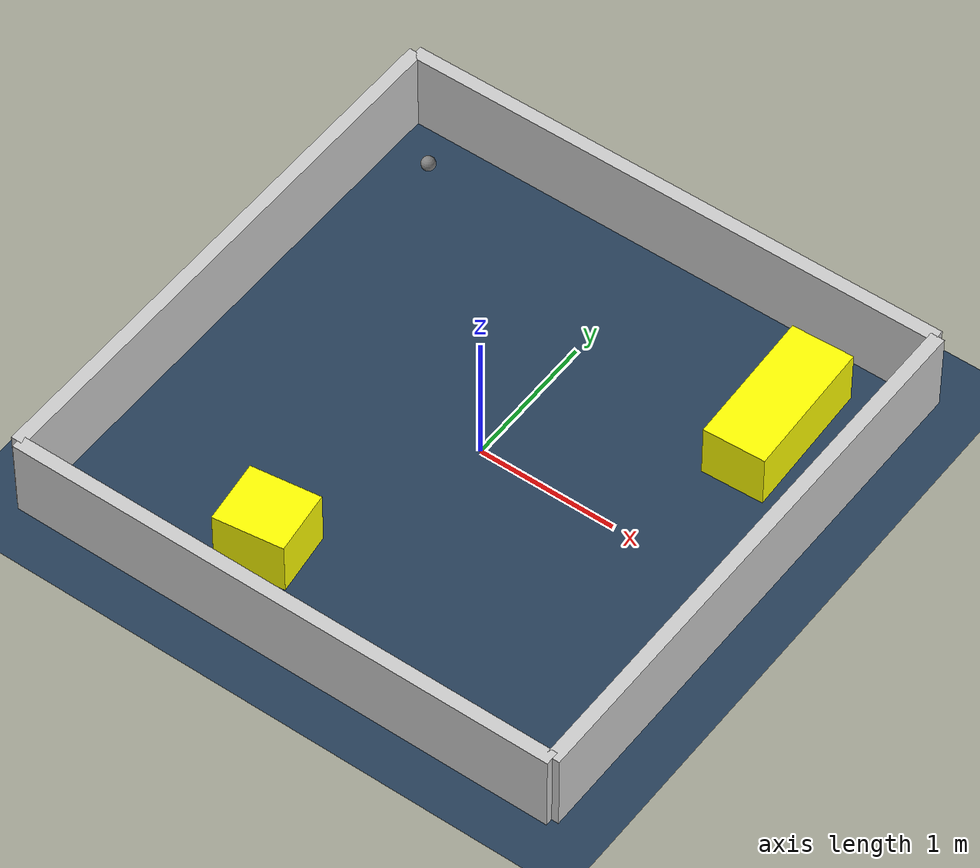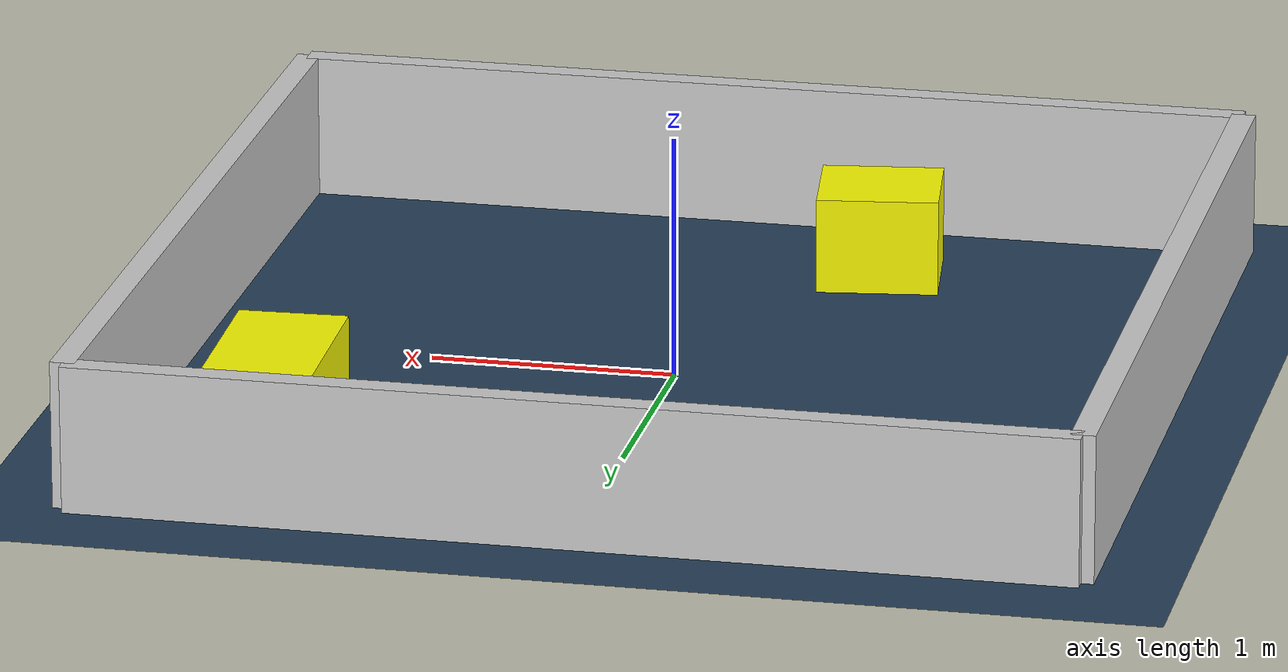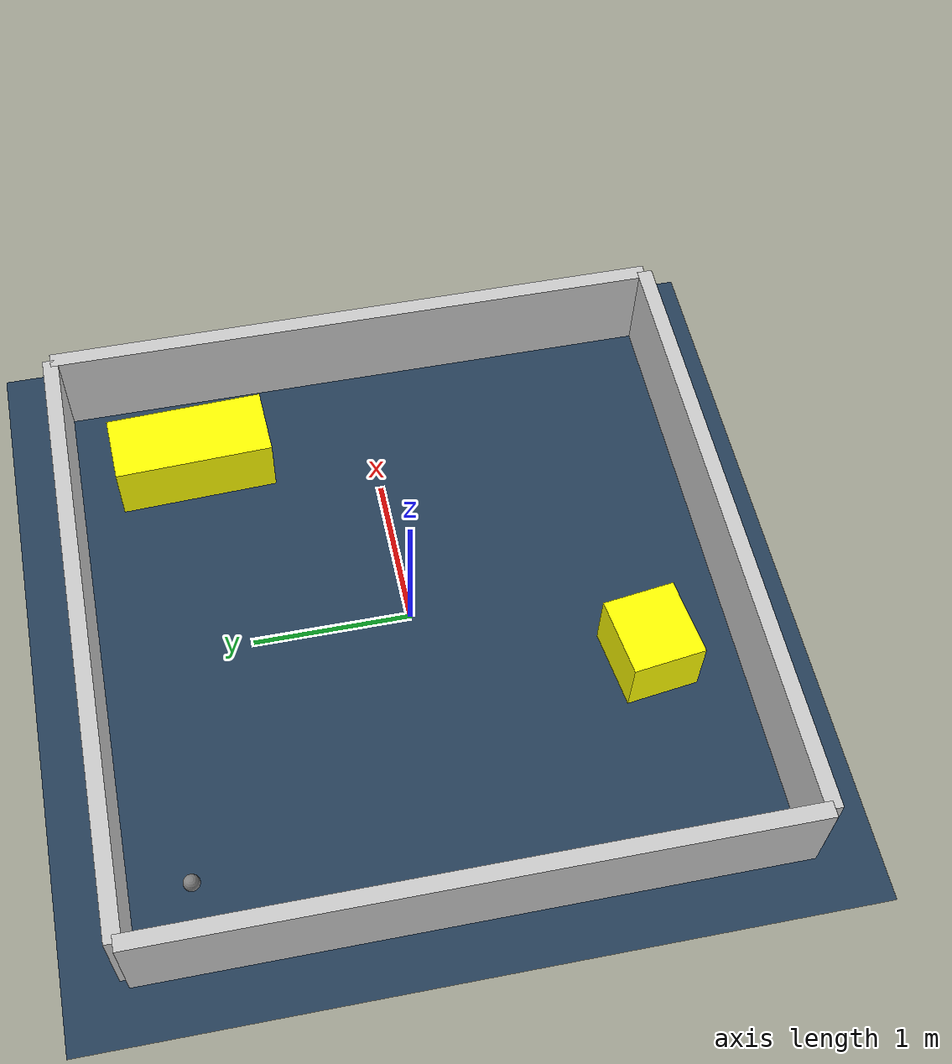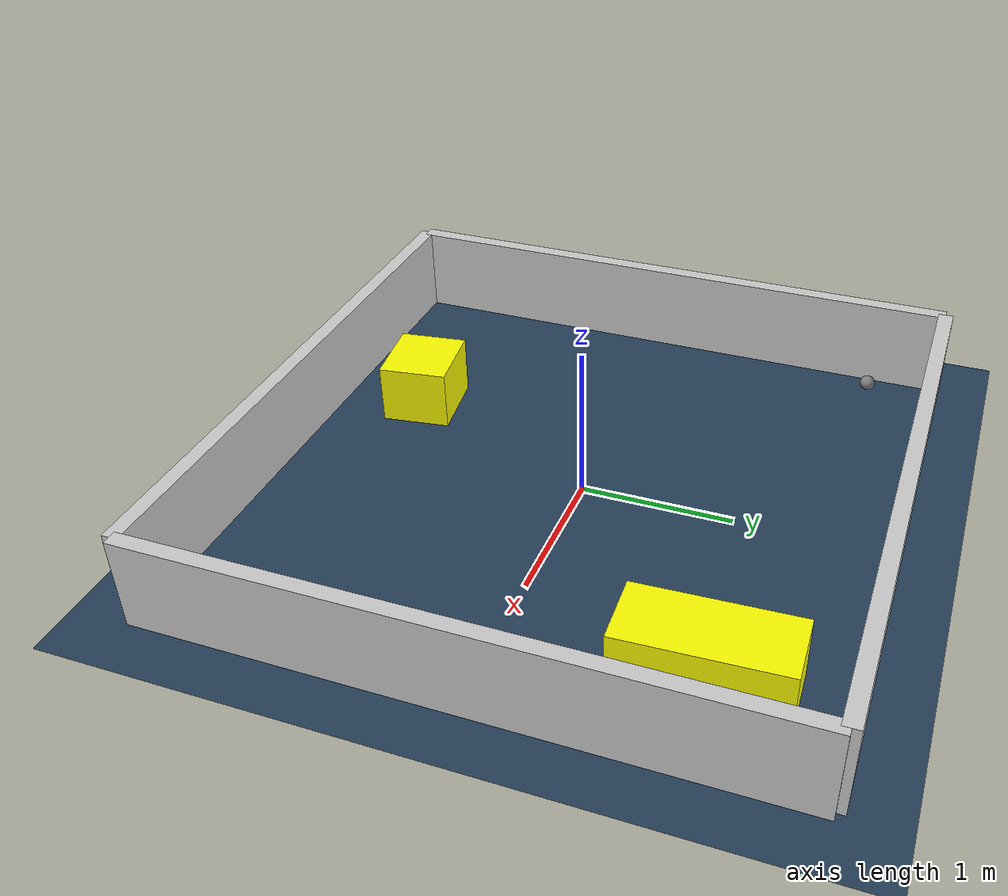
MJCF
<?xml version="1.0" ?>
<mujoco model="generated_environment">
  <option timestep="0.01" integrator="RK4" cone="elliptic"/>
  <default>
    <geom density="1"/>
  </default>
  <asset>
    <texture builtin="gradient" height="3072" rgb1="0.3 0.5 0.7" rgb2="0 0 0" type="skybox" width="512"/>
    <texture builtin="checker" height="300" mark="edge" markrgb="0.8 0.8 0.8" name="groundplane" rgb1="0.2 0.3 0.4" rgb2="0.1 0.2 0.3" type="2d" width="300"/>
    <material name="groundplane" reflectance="0.2" texrepeat="5 5" texture="groundplane" texuniform="true"/>
    <material name="robot" rgba="0.0 1.0 0.0 1"/>
  </asset>
  <worldbody>
    <light dir="0 0 -1" directional="true" pos="0 0 1.5"/>
    <geom condim="4" friction="1.0 0.005 0.001" material="groundplane" name="floor" size="0 0 0.05" type="plane"/>
    <body name="walls">
      <geom name="wall_1" condim="4" pos="-2.0 0.0 0.3" rgba="0.800000011920929 0.800000011920929 0.800000011920929 1.0" size="0.05 2.0 0.3" type="box"/>
      <geom name="wall_2" condim="4" pos="2.0 0.0 0.3" rgba="0.800000011920929 0.800000011920929 0.800000011920929 1.0" size="0.05 2.0 0.3" type="box"/>
      <geom name="wall_3" condim="4" pos="0.0 -2.0 0.3" rgba="0.800000011920929 0.800000011920929 0.800000011920929 1.0" size="2.0 0.05 0.3" type="box"/>
      <geom name="wall_4" condim="4" pos="0.0 2.0 0.3" rgba="0.800000011920929 0.800000011920929 0.800000011920929 1.0" size="2.0 0.05 0.3" type="box"/>
    </body>
    <body name="robot">
      <joint name="joint_x" type="slide" pos="0 0 0" axis="1 0 0"/>
      <joint name="joint_y" type="slide" pos="0 0 0" axis="0 1 0"/>
      <geom name="robot" type="sphere" pos="-1.5805095130664486 1.5689976696434051 0.2" size="0.05" mass="5." friction="1.0 0.005 0.0001" condim="4"/>
      <site name="sensor_ball"/>
    </body>
    <body name="obstacle_1_movable">
      <geom name="obstacle_1_movable" condim="4" pos="-0.5802477958053764 -1.3840232673508797 0.2" euler="0 0 187.54704676795583" friction="1.0 0.005 0.001" rgba="1 1 0 1" size="0.2515890114020094 0.2304704831435076 0.2" type="box" mass="0.1"/>
      <joint type="free"/>
    </body>
    <body name="obstacle_2_movable">
      <geom name="obstacle_2_movable" condim="4" pos="1.3850471526798842 1.191830366240072 0.2" euler="0 0 92.15949689517744" friction="1.0 0.005 0.001" rgba="1 1 0 1" size="0.5056941380404318 0.2228790046601542 0.2" type="box" mass="0.1"/>
      <joint type="free"/>
    </body>
  </worldbody>
  <actuator>
    <motor name="actuator_x" joint="joint_x" gear="1" ctrlrange="-1 1"/>
    <motor name="actuator_y" joint="joint_y" gear="1" ctrlrange="-1 1"/>
  </actuator>
</mujoco>
